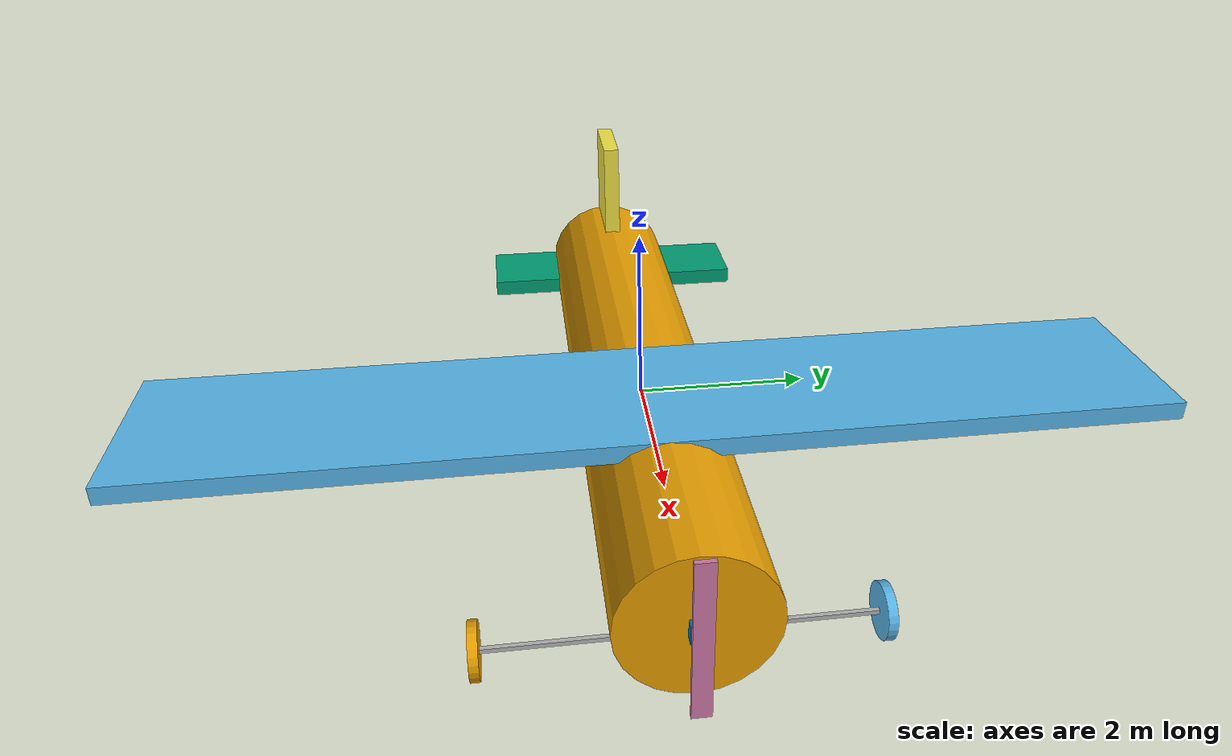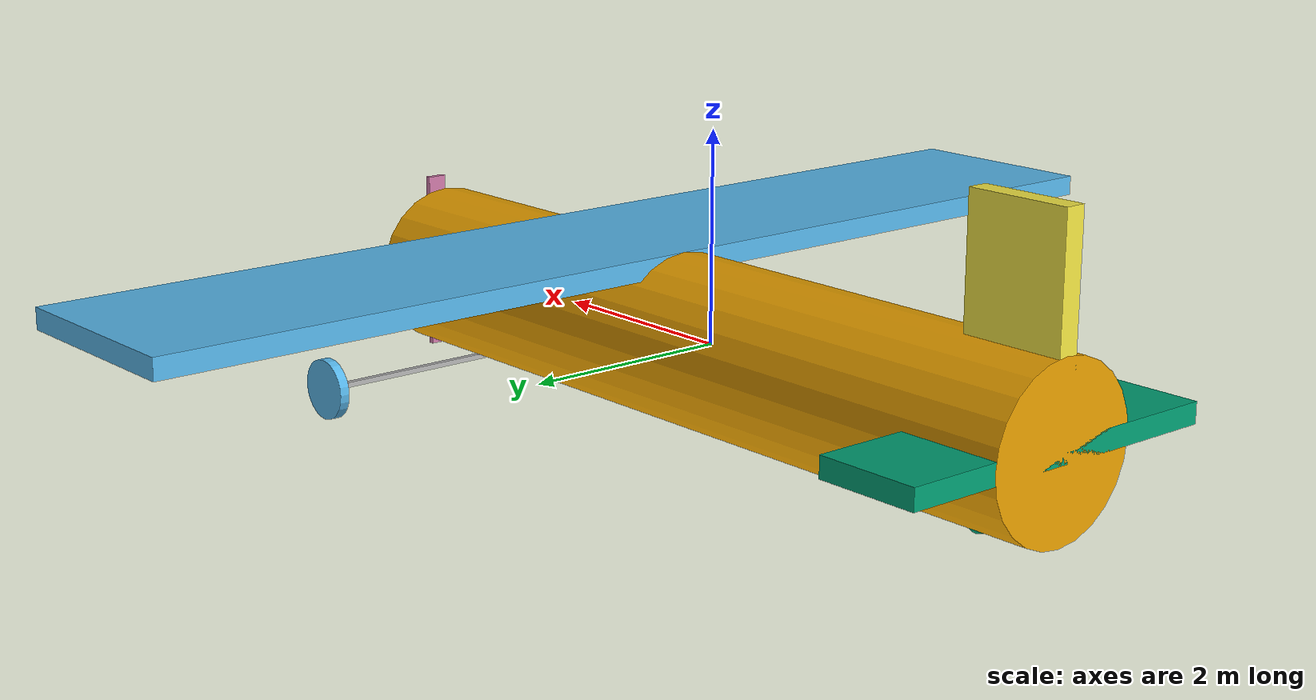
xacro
<?xml version="1.0"?>
<robot name="cassna 172" xmlns:xacro="http://www.ros.org/wiki/xacro">

<xacro:property name="source" value="$(find last_letter_2)/config/param/aircrafts/csl_2k19/rigidBody.yaml" />
<xacro:property name="dictionary" value="${load_yaml(source)}"/>
<xacro:property name="mass" value="${dictionary['airframe/m']}"/>

<!-- body, airfoil sizes -->
<xacro:property name="body_s" value="1" />
<xacro:property name="airfoil_s" value="1" />
<xacro:property name="whole_mass" value="100" />

<!-- body link , body_height, body_rad, body_mass -->
<xacro:property name="body_h" value="${8.28*body_s}" />
<xacro:property name="body_r" value="${0.8*body_s}" />
<xacro:property name="body_m" value="${0.4*whole_mass}" />

    <!-- only body_FLU acceptable name for base_link -->
    <link name="body_FLU">
        <visual>
            <origin rpy="0 -${pi/2} 0 " />
            <geometry>
                <cylinder radius="${body_r}" length="${body_h}" />
            </geometry>
        </visual>

        <collision>
            <origin rpy="0 -${pi/2} 0 " />
            <geometry>
                <cylinder radius="${body_r}" length="${body_h}" />
            </geometry>
        </collision>

        <inertial>
            <origin rpy="0 -${pi/2} 0 " />
            <mass value="${body_m}" />
            <inertia    ixx="${1/12*(3*body_r*body_r+body_h*body_h)*body_m}" ixy="0" ixz="0" iyz="0"
                        iyy="${1/12*(3*body_r*body_r+body_h*body_h)*body_m}"
                        izz="${1/2*body_m*body_r*body_r}" />
        </inertial>
    </link>

    ----------------------------------------------------------------------------  airfoils
<!-- airfoil1 link parameters , x, y, z, mass-->
<xacro:property name="airfoil1_x" value="${2*body_s}" />
<xacro:property name="airfoil1_y" value="${11*body_s}" />
<xacro:property name="airfoil1_z" value="${body_s/5}"/>
<xacro:property name="airfoil1_m" value="${0.3*whole_mass}" />               ----airfoil1 mass

    <!-- only airfoil(Number_0f_Airfoil) acceptable name for airfoils -->
    <link name="airfoil1">
        <visual>
            <geometry>
                <box size="${airfoil1_x} ${airfoil1_y} ${airfoil1_z}" />
            </geometry>
        </visual>

        <collision>
            <geometry>
                <box size="${airfoil1_x} ${airfoil1_y} ${airfoil1_z}" />
            </geometry>
        </collision>

         <inertial>
            <mass value="${airfoil1_m}" />
            <inertia    ixx="${1/12*airfoil1_m*(airfoil1_y*airfoil1_y+airfoil1_z*airfoil1_z)}" ixy="0" ixz="0" iyz="0"
                        iyy="${1/12*airfoil1_m*(airfoil1_x*airfoil1_x+airfoil1_z*airfoil1_z)}"
                        izz="${1/12*airfoil1_m*(airfoil1_x*airfoil1_x+airfoil1_y*airfoil1_y)}" />
        </inertial>
    </link>

    <joint name="body_FLU_to_airfoil1" type="revolute">
        <origin xyz="${body_h/6} 0 ${body_r-airfoil1_z/2}" rpy ="0 0 0"/>
        <parent link="body_FLU" />
        <child link="airfoil1" />
        <limit effort="1000.0" velocity="0.5"/>   ---default limits upper=lower=0
    </joint>

<!-- airfoil2 link parameters , x, y, z, mass-->
<xacro:property name="airfoil2_x" value="${body_s}" />
<xacro:property name="airfoil2_y" value="${3.4*body_s}" />
<xacro:property name="airfoil2_z" value="${body_s/5}"/>
<xacro:property name="airfoil2_m" value="${0.1*whole_mass}" />               ----airfoil2 mass

    <!-- only airfoil(Number_0f_Airfoil) acceptable name for airfoils -->
    <link name="airfoil2">
        <visual>
            <geometry>
                <box size="${airfoil2_x} ${airfoil2_y} ${airfoil2_z}" />
            </geometry>
        </visual>

        <collision>
            <geometry>
                <box size="${airfoil2_x} ${airfoil2_y} ${airfoil2_z}" />
            </geometry>
        </collision>

         <inertial>
            <mass value="${airfoil2_m}" />
            <inertia    ixx="${1/12*airfoil2_m*(airfoil2_y*airfoil2_y+airfoil2_z*airfoil2_z)}" ixy="0" ixz="0" iyz="0"
                        iyy="${1/12*airfoil2_m*(airfoil2_x*airfoil2_x+airfoil2_z*airfoil2_z)}"
                        izz="${1/12*airfoil2_m*(airfoil2_x*airfoil2_x+airfoil2_y*airfoil2_y)}" />
        </inertial>
    </link>

    <joint name="body_FLU_to_airfoil2" type="revolute">
        <origin xyz="${-body_h/2+airfoil2_x/2} 0 0" rpy ="0 0 0"/>
        <parent link="body_FLU" />
        <child link="airfoil2" />
        <limit effort="1000.0" velocity="0.5"/>   ---default limits upper=lower=0
    </joint>

<!-- airfoil3 link parameters , x, y, z, mass-->
<xacro:property name="airfoil3_x" value="${body_s}" />
<xacro:property name="airfoil3_y" value="${2*body_s}" />
<xacro:property name="airfoil3_z" value="${body_s/5}"/>
<xacro:property name="airfoil3_m" value="${0.1*whole_mass}" />               ----airfoil3 mass

    <!-- only airfoil(Number_0f_Airfoil) acceptable name for airfoils -->
    <link name="airfoil3">
        <visual>
            <geometry>
                <box size="${airfoil3_x} ${airfoil3_y} ${airfoil3_z}" />
            </geometry>
        </visual>

        <collision>
            <geometry>
                <box size="${airfoil3_x} ${airfoil3_y} ${airfoil3_z}" />
            </geometry>
        </collision>

         <inertial>
            <mass value="${airfoil3_m}" />
            <inertia    ixx="${1/12*airfoil3_m*(airfoil3_y*airfoil3_y+airfoil3_z*airfoil3_z)}" ixy="0" ixz="0" iyz="0"
                        iyy="${1/12*airfoil3_m*(airfoil3_x*airfoil3_x+airfoil3_z*airfoil3_z)}"
                        izz="${1/12*airfoil3_m*(airfoil3_x*airfoil3_x+airfoil3_y*airfoil3_y)}" />
        </inertial>
    </link>

    <joint name="body_FLU_to_airfoil3" type="revolute">
        <origin xyz="${-body_h/2+airfoil3_x/2} 0 ${airfoil3_y/2}" rpy ="${pi/2} 0 0"/>
        <parent link="body_FLU" />
        <child link="airfoil3" />
        <limit effort="1000.0" velocity="0.5"/>   ---default limits upper=lower=0
    </joint>

    ----------------------------------------------------------------------------------- motors
<!-- motor1 link -->
<!-- motor1 parameters , x, y, z, mass -->
<xacro:property name="motor1_x" value="${body_s/10}" />
<xacro:property name="motor1_y" value="${body_s/5}" />
<xacro:property name="motor1_z" value="${body_s/5}" />
<xacro:property name="motor1_m" value="${whole_mass/100}" />

<!-- only motor1(Number_0f_Motor1) acceptable name for motor1s -->
 <link name="motor1">
        <visual>
            <origin xyz="${0.5*motor1_x} 0 0"/>
            <geometry>
                <box size="${motor1_x} ${motor1_y} ${motor1_z}" />
            </geometry>
        </visual>

        <collision>
            <origin xyz="${0.5*motor1_x} 0 0"/>
            <geometry>
                <box size="${motor1_x} ${motor1_y} ${motor1_z}" />
            </geometry>
        </collision>

        <inertial>
            <origin xyz="${0.5*motor1_x} 0 0"/>
            <mass value="${motor1_m}" />
            <inertia    ixx="${1/12*motor1_m*(motor1_y*motor1_y+motor1_z*motor1_z)}" ixy="0" ixz="0" iyz="0"
                        iyy="${1/12*motor1_m*(motor1_x*motor1_x+motor1_z*motor1_z)}"
                        izz="${1/12*motor1_m*(motor1_x*motor1_x+motor1_y*motor1_y)}" />
        </inertial>
    </link>

    <joint name="body_FLU_to_motor1" type="revolute">
        <origin xyz="${0.5*body_h} 0 0" rpy="0 0 0" />
        <limit effort="1000.0" velocity="0.5"/>
        <parent link="body_FLU" />
        <child link="motor1" />
    </joint>

 -----------------------------------------------------------------------------------propeller
<!-- axle link parameters height, rad, mass-->
<xacro:property name="axle_h" value="${body_h/100}" />
<xacro:property name="axle_r" value="${body_r/10}" />
<xacro:property name="axle_m" value="${body_m/100}" />

    <link name="axle1">
        <visual>
            <origin xyz="${axle_h/2} 0 0" rpy="0 ${pi/2} 0"/>
            <geometry>
                <cylinder radius="${axle_r}" length="${axle_h}" />
            </geometry>
        </visual>

        <collision>
            <origin xyz="${axle_h/2} 0 0" rpy="0 ${pi/2} 0"/>
            <geometry>
                <cylinder radius="${axle_r}" length="${axle_h}" />
            </geometry>
        </collision>

        <inertial>
            <origin xyz="${axle_h/2} 0 0" />
            <mass value="${axle_m}" />
            <inertia    ixx="${1/12*axle_m*axle_h*axle_h+1/4*axle_m*axle_r*axle_r}" ixy="0" ixz="0" iyz="0"
                        iyy="${1/12*axle_m*axle_h*axle_h+1/4*axle_m*axle_r*axle_r}"
                        izz="${1/2*axle_m*axle_r*axle_r}" />
        </inertial>
    </link>

    <joint name="motor1_to_axle1" type="continuous">
        <origin xyz="${motor1_x} 0 0" rpy="0 0 0" />
        <axis xyz="1 0 0" />
        <parent link="motor1" />
        <child link="axle1" />
    </joint>

<!-- propeller link parameters x, y, z, mass -->
<xacro:property name="propeller_x" value="${1.8*body_s}" />
<xacro:property name="propeller_y" value="${0.2*body_s}" />
<xacro:property name="propeller_z" value="${0.05*body_s}" />
<xacro:property name="propeller_m" value="${body_m/100}" />

    <link name="propeller1">
        <visual>
            <geometry>
                <box size="${propeller_x} ${propeller_y} ${propeller_z}" />
            </geometry>
        </visual>

        <collision>
            <geometry>
                <box size="${propeller_x} ${propeller_y} ${propeller_z}" />
            </geometry>
        </collision>

        <inertial>
            <mass value="${propeller_m}" />
           <inertia     ixx="${1/12*propeller_m*(propeller_y*propeller_y+propeller_z*propeller_z)}" ixy="0" ixz="0" iyz="0"
                        iyy="${1/12*propeller_m*(propeller_x*propeller_x+propeller_z*propeller_z)}"
                        izz="${1/12*propeller_m*(propeller_x*propeller_x+propeller_y*propeller_y)}" />
        </inertial>

    </link>

    <joint name="axle1_to_propeller1" type="fixed">
        <origin xyz="${axle_h} 0 0" rpy="0 ${pi/2} 0" />
        <parent link="axle1" />
        <child link="propeller1" />
    </joint>

     ---------------------------------------------------------------------------front wheels

     <!-- wheel_base_link parameters, x, y, z, mass-->
<xacro:property name="wheel_base_x" value="${0.05*body_s}" />
<xacro:property name="wheel_base_y" value="${4*body_s}" />
<xacro:property name="wheel_base_z" value="${0.05*body_s}" />
<xacro:property name="wheel_base_m" value="${body_m/100}" />

    <link name="wheel_base">
        <visual>
            <geometry>
                <box size="${wheel_base_x} ${wheel_base_y} ${wheel_base_z}" />
            </geometry>
        </visual>

        <collision>
            <geometry>
                <box size="${wheel_base_x} ${wheel_base_y} ${wheel_base_z}" />
            </geometry>
        </collision>

        <inertial>
            <mass value="${wheel_base_m}" />
            <inertia    ixx="${1/12*wheel_base_m*(wheel_base_y*wheel_base_y+wheel_base_z*wheel_base_z)}" ixy="0" ixz="0" iyz="0"
                        iyy="${1/12*wheel_base_m*(wheel_base_x*wheel_base_x+wheel_base_z*wheel_base_z)}"
                        izz="${1/12*wheel_base_m*(wheel_base_x*wheel_base_x+wheel_base_y*propeller_y)}" />
        </inertial>

    </link>

    <joint name=" body_FLU_to_wheel_base" type="fixed">
        <origin xyz="${0.4*body_h} 0 -${body_r}" rpy="0 0 0" />
        <parent link="body_FLU" />
        <child link="wheel_base" />
    </joint>

<!-- left wheel link parameters, rad, height, mass-->
<xacro:property name="left_wheel_r" value="${0.3*body_s}" />
<xacro:property name="left_wheel_h" value="${0.1*body_s}" />
<xacro:property name="left_wheel_m" value="${body_m/100}" />

    <link name="left_wheel">
        <visual>
            <origin xyz="0 0 ${left_wheel_h/2}" />
            <geometry>
                <cylinder radius="${left_wheel_r}" length="${left_wheel_h}" />
            </geometry>
        </visual>

        <collision>
            <origin xyz="0 0 ${left_wheel_h/2}" />
            <geometry>
                <cylinder radius="${left_wheel_r}" length="${left_wheel_h}" />
            </geometry>
        </collision>

        <inertial>
            <origin xyz="0 0 ${left_wheel_h/2}" />
            <mass value="${left_wheel_m}" />
           <inertia     ixx="${1/12*left_wheel_m*left_wheel_h*left_wheel_h+1/4*left_wheel_m*left_wheel_r*left_wheel_r}" ixy="0" ixz="0" iyz="0"
                        iyy="${1/12*left_wheel_m*left_wheel_h*left_wheel_h+1/4*left_wheel_m*left_wheel_r*left_wheel_r}"
                        izz="${1/2*left_wheel_m*left_wheel_r*left_wheel_r}" />
        </inertial>
    </link>

    <joint name="wheel_base_to_left_wheel" type="continuous">
        <origin xyz="0 -${wheel_base_y/2} 0" rpy="${pi/2} 0 0" />
        <parent link="wheel_base" />
        <child link="left_wheel" />
        <axis xyz=" 0 0 1" />
    </joint>

<!-- right wheel link parameters rad, height, mass-->
<xacro:property name="right_wheel_r" value="${left_wheel_r}" />
<xacro:property name="right_wheel_h" value="${left_wheel_h}" />
<xacro:property name="right_wheel_m" value="${whole_mass/100}" />

    <link name="right_wheel">
        <visual>
            <origin xyz="0 0 -${right_wheel_h/2}" />
            <geometry>
                <cylinder radius="${right_wheel_r}" length="${right_wheel_h}" />
            </geometry>
        </visual>

        <collision>
            <origin xyz="0 0 -${right_wheel_h/2}" />
            <geometry>
                <cylinder radius="${right_wheel_r}" length="${right_wheel_h}" />
            </geometry>
        </collision>

        <inertial>
            <origin xyz="0 0 -${right_wheel_h/2}" />
           <mass value="${right_wheel_m}" />
           <inertia     ixx="${1/12*right_wheel_m*right_wheel_h*right_wheel_h+1/4*right_wheel_m*right_wheel_r*right_wheel_r}" ixy="0" ixz="0" iyz="0"
                        iyy="${1/12*right_wheel_m*right_wheel_h*right_wheel_h+1/4*right_wheel_m*right_wheel_r*right_wheel_r}"
                        izz="${1/2*right_wheel_m*right_wheel_r*right_wheel_r}" />
        </inertial>
    </link>

    <joint name="wheel_base_to_right_wheel" type="continuous">
        <origin xyz="0 ${wheel_base_y/2} 0" rpy="${pi/2} 0 0" />
        <parent link="wheel_base" />
        <child link="right_wheel" />
        <axis xyz=" 0 0 1" />
    </joint>

    ------------------------------------------------------------------------------------ rear sphere wheel
<!-- rear wheel link parameters, rad, mass -->
<xacro:property name="rear_wheel_m" value="${whole_mass/100}" />
<xacro:property name="rear_wheel_r" value="${0.1*body_s}" />

    <link name="rear_wheel">
        <visual>
            <geometry>
                <sphere radius="${rear_wheel_r}" />
            </geometry>
        </visual>

        <collision>
            <geometry>
                <sphere radius="${rear_wheel_r}" />
            </geometry>
        </collision>

        <inertial>
            <mass value="${rear_wheel_m}" />
            <inertia    ixx="${2/5*rear_wheel_m*rear_wheel_r*rear_wheel_r}" ixy="0" ixz="0" iyz="0"
                        iyy="${2/5*rear_wheel_m*rear_wheel_r*rear_wheel_r}"
                        izz="${2/5*rear_wheel_m*rear_wheel_r*rear_wheel_r}" />
        </inertial>
    </link>

    <joint name="body_FLU_to_rear_wheel" type="continuous">
        <origin xyz="-${0.4*body_h} 0 -${body_r}" />
        <axis xyz="0 1 0"/>
        <parent link="body_FLU" />
        <child link="rear_wheel" />
    </joint>

<!-- model plugins -->
    <gazebo>
    <plugin name="model_plugin" filename="libmodel_plugin.so"/>
    <plugin name="joint_state_publisher" filename="libgazebo_ros_joint_state_publisher.so">
        <jointName>body_FLU_to_airfoil1,body_FLU_to_airfoil2,body_FLU_to_airfoil3, body_FLU_to_motor1, wheel_base_to_left_wheel, wheel_base_to_right_wheel, body_FLU_to_rear_wheel </jointName>
        <robotNamespace>last_letter_2</robotNamespace>
        <updateRate>0</updateRate>
    </plugin>
  </gazebo>

</robot>
